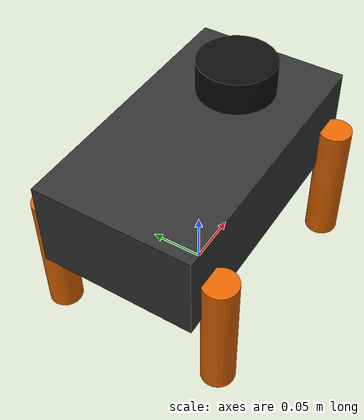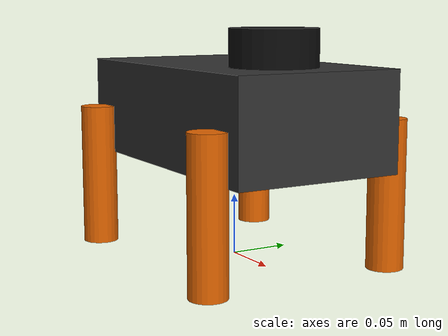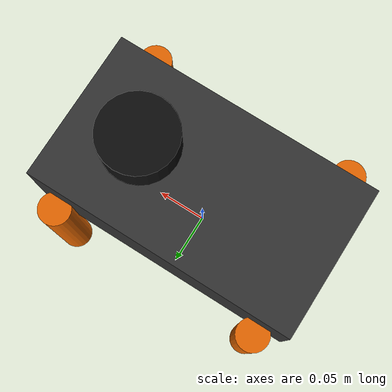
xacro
<?xml version="1.0"?>
<robot name="xgo_mini2s" xmlns:xacro="http://www.ros.org/wiki/xacro">

  <!-- Materials -->
  <material name="dark_grey">
    <color rgba="0.2 0.2 0.2 1.0"/>
  </material>
  <material name="orange">
    <color rgba="0.9 0.4 0.0 1.0"/>
  </material>
  <material name="black">
    <color rgba="0.05 0.05 0.05 1.0"/>
  </material>
  <material name="blue">
    <color rgba="0.1 0.3 0.8 1.0"/>
  </material>

  <!-- Base Footprint (Ground plane projection) -->
  <link name="base_footprint"/>

  <joint name="base_footprint_joint" type="fixed">
    <parent link="base_footprint"/>
    <child link="base_link"/>
    <origin xyz="0 0 0.12" rpy="0 0 0"/>
  </joint>

  <!-- Base Link (Robot Body) -->
  <link name="base_link">
    <visual>
      <origin xyz="0 0 0" rpy="0 0 0"/>
      <geometry>
        <box size="0.25 0.14 0.08"/>
      </geometry>
      <material name="dark_grey"/>
    </visual>
    <collision>
      <origin xyz="0 0 0" rpy="0 0 0"/>
      <geometry>
        <box size="0.25 0.14 0.08"/>
      </geometry>
    </collision>
    <inertial>
      <mass value="1.2"/>
      <origin xyz="0 0 0" rpy="0 0 0"/>
      <inertia ixx="0.0026" ixy="0" ixz="0" iyy="0.0068" iyz="0" izz="0.0082"/>
    </inertial>
  </link>

  <!-- Visual Legs -->
  <xacro:macro name="leg" params="prefix x_pos y_pos">
    <link name="${prefix}_leg">
      <visual>
        <origin xyz="0 0 -0.06" rpy="0 0 0"/>
        <geometry>
          <cylinder radius="0.015" length="0.12"/>
        </geometry>
        <material name="orange"/>
      </visual>
      <collision>
        <origin xyz="0 0 -0.06" rpy="0 0 0"/>
        <geometry>
          <sphere radius="0.018"/>
        </geometry>
      </collision>
      <inertial>
        <mass value="0.1"/>
        <origin xyz="0 0 -0.06" rpy="0 0 0"/>
        <inertia ixx="0.0001" ixy="0" ixz="0" iyy="0.0001" iyz="0" izz="0.00005"/>
      </inertial>
    </link>

    <joint name="${prefix}_leg_joint" type="fixed">
      <parent link="base_link"/>
      <child link="${prefix}_leg"/>
      <origin xyz="${x_pos} ${y_pos} 0" rpy="0 0 0"/>
    </joint>
  </xacro:macro>

  <xacro:leg prefix="fl" x_pos="0.10" y_pos="0.08"/>
  <xacro:leg prefix="fr" x_pos="0.10" y_pos="-0.08"/>
  <xacro:leg prefix="rl" x_pos="-0.10" y_pos="0.08"/>
  <xacro:leg prefix="rr" x_pos="-0.10" y_pos="-0.08"/>

  <!-- IMU Sensor -->
  <link name="imu_link"/>

  <joint name="imu_joint" type="fixed">
    <parent link="base_link"/>
    <child link="imu_link"/>
    <origin xyz="0 0 0" rpy="0 0 0"/>
  </joint>

  <!-- LiDAR Sensor Link -->
  <link name="laser_link">
    <visual>
      <origin xyz="0 0 0" rpy="0 0 0"/>
      <geometry>
        <cylinder radius="0.035" length="0.03"/>
      </geometry>
      <material name="black"/>
    </visual>
    <collision>
      <origin xyz="0 0 0" rpy="0 0 0"/>
      <geometry>
        <cylinder radius="0.035" length="0.03"/>
      </geometry>
    </collision>
    <inertial>
      <mass value="0.15"/>
      <origin xyz="0 0 0" rpy="0 0 0"/>
      <inertia ixx="0.0001" ixy="0" ixz="0" iyy="0.0001" iyz="0" izz="0.0001"/>
    </inertial>
  </link>

  <joint name="laser_joint" type="fixed">
    <parent link="base_link"/>
    <child link="laser_link"/>
    <origin xyz="0.06 0 0.055" rpy="0 0 0"/>
  </joint>

  <!-- ================= Gazebo Harmonic Plugins & Sensors ================= -->
  <gazebo reference="base_link">
    <material>
      <ambient>0.2 0.2 0.2 1</ambient>
      <diffuse>0.2 0.2 0.2 1</diffuse>
    </material>
  </gazebo>

  <gazebo reference="imu_link">
    <sensor name="imu_sensor" type="imu">
      <always_on>true</always_on>
      <update_rate>50</update_rate>
      <visualize>true</visualize>
      <topic>/imu/data</topic>
      <gz_frame_id>imu_link</gz_frame_id>
    </sensor>
  </gazebo>

  <gazebo reference="laser_link">
    <material>
      <ambient>0.1 0.1 0.1 1</ambient>
      <diffuse>0.1 0.1 0.1 1</diffuse>
    </material>
    <sensor name="gpu_lidar" type="gpu_lidar">
      <pose>0 0 0 0 0 0</pose>
      <always_on>true</always_on>
      <visualize>true</visualize>
      <update_rate>10</update_rate>
      <topic>/scan</topic>
      <gz_frame_id>laser_link</gz_frame_id>
      <lidar>
        <scan>
          <horizontal>
            <samples>360</samples>
            <resolution>1</resolution>
            <min_angle>-3.14159265</min_angle>
            <max_angle>3.14159265</max_angle>
          </horizontal>
        </scan>
        <range>
          <min>0.12</min>
          <max>10.0</max>
          <resolution>0.01</resolution>
        </range>
      </lidar>
    </sensor>
  </gazebo>

  <!-- Gazebo Movement & Odometry Plugins -->
  <gazebo>
    <plugin filename="gz-sim-velocity-control-system" name="gz::sim::systems::VelocityControl">
      <topic>/cmd_vel</topic>
    </plugin>
    <plugin filename="gz-sim-odometry-publisher-system" name="gz::sim::systems::OdometryPublisher">
      <odom_frame>odom</odom_frame>
      <robot_base_frame>base_footprint</robot_base_frame>
      <odom_topic>/odom</odom_topic>
      <tf_topic>/model/xgo_mini2s/tf</tf_topic>
      <dimensions>2</dimensions>
    </plugin>
  </gazebo>

</robot>
